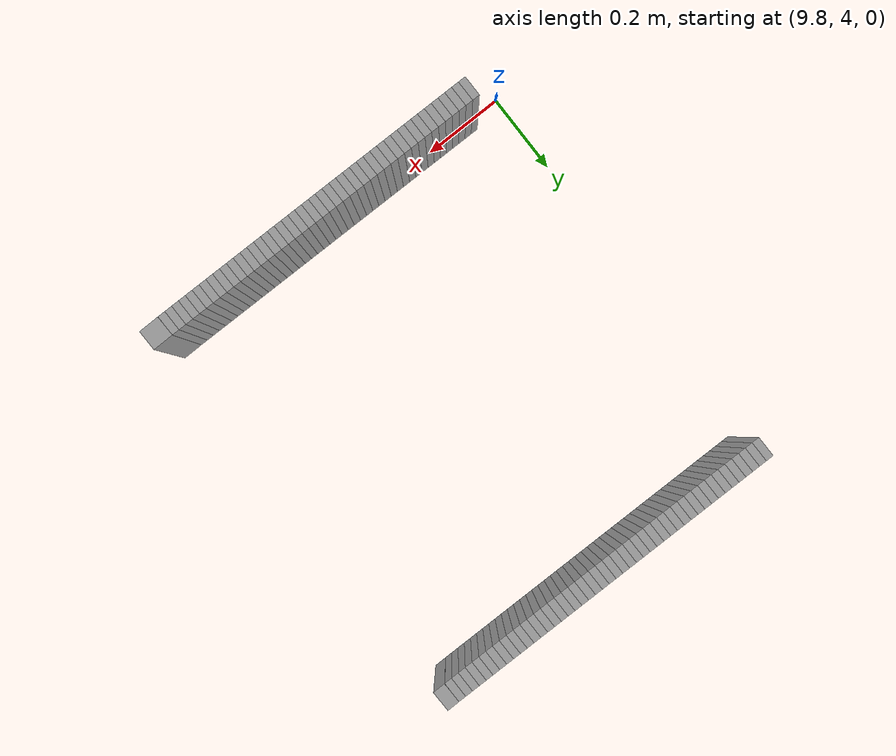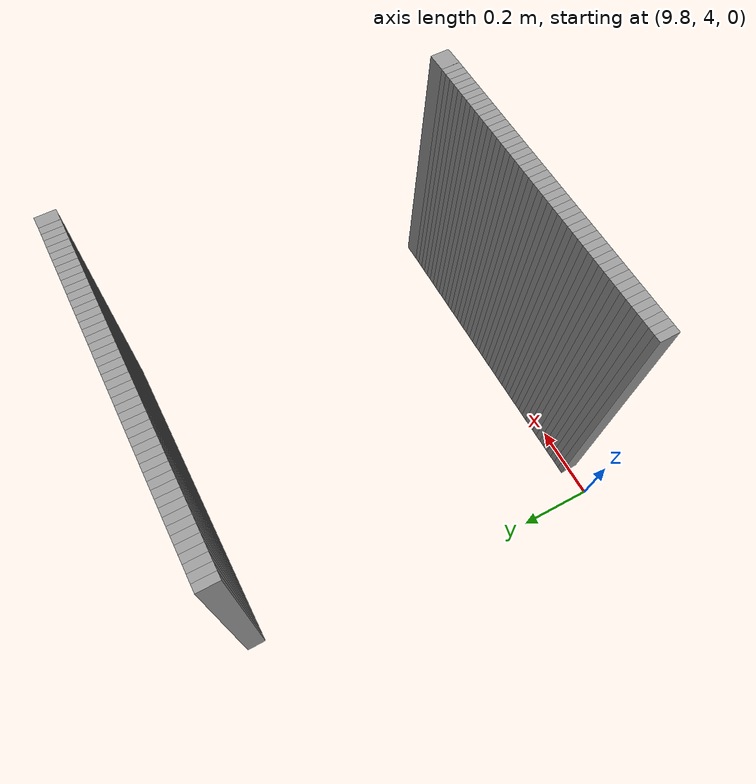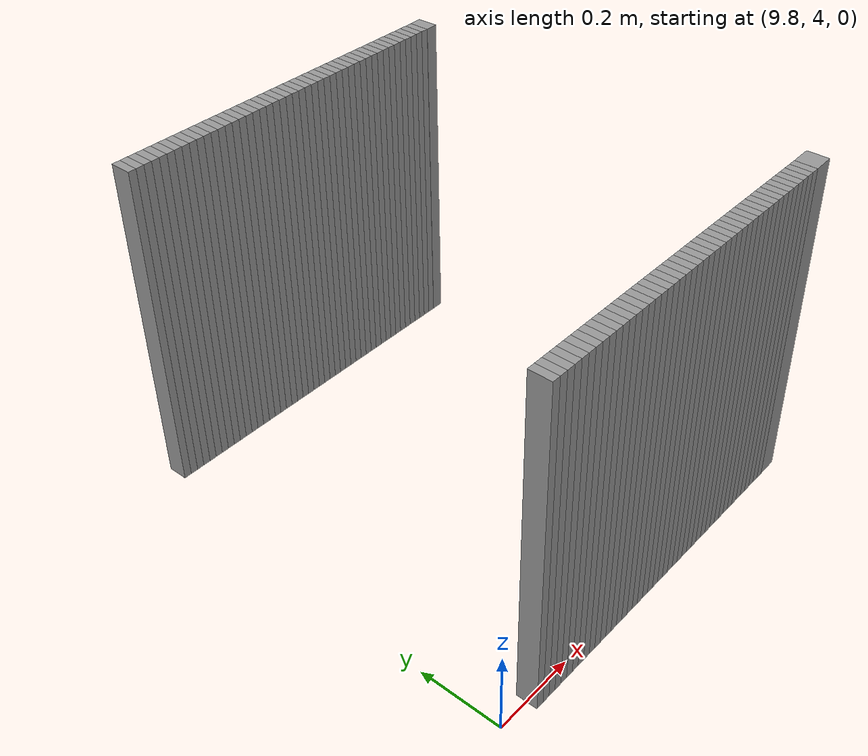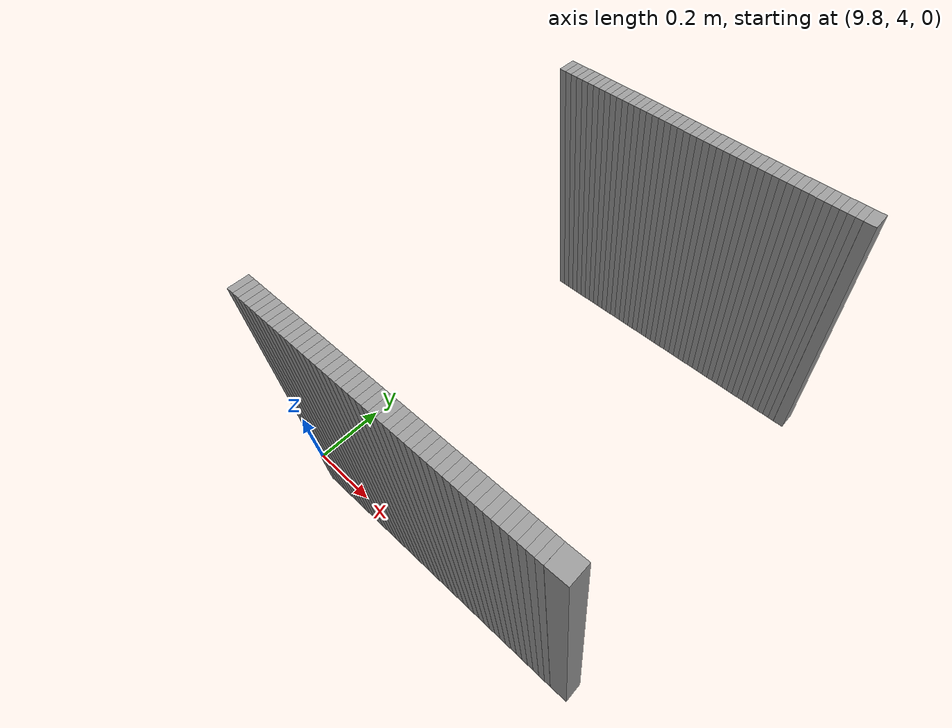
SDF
<sdf version="1.6">
 <model name="path_walls">
  <static>true</static>
  <model name="wall_left_12">
   <static>true</static>
   <pose>9.867909079521047 5.0 0.40 0 0 0.0</pose>
   <link name="wall_link">
    <visual name="wall_visual">
     <geometry><box><size>0.01863748760820627 0.05 0.8</size></box></geometry>
     <material><ambient>0.3 0.3 0.3 1</ambient><diffuse>0.6 0.6 0.6 1</diffuse></material>
    </visual>
    <collision name="wall_collision">
     <geometry><box><size>0.01863748760820627 0.05 0.8</size></box></geometry>
    </collision>
   </link>
  </model>
  <model name="wall_left_13">
   <static>true</static>
   <pose>9.886546567129255 5.0 0.40 0 0 0.0</pose>
   <link name="wall_link">
    <visual name="wall_visual">
     <geometry><box><size>0.018637487608208048 0.05 0.8</size></box></geometry>
     <material><ambient>0.3 0.3 0.3 1</ambient><diffuse>0.6 0.6 0.6 1</diffuse></material>
    </visual>
    <collision name="wall_collision">
     <geometry><box><size>0.018637487608208048 0.05 0.8</size></box></geometry>
    </collision>
   </link>
  </model>
  <model name="wall_left_14">
   <static>true</static>
   <pose>9.905184054737461 5.0 0.40 0 0 0.0</pose>
   <link name="wall_link">
    <visual name="wall_visual">
     <geometry><box><size>0.018637487608208048 0.05 0.8</size></box></geometry>
     <material><ambient>0.3 0.3 0.3 1</ambient><diffuse>0.6 0.6 0.6 1</diffuse></material>
    </visual>
    <collision name="wall_collision">
     <geometry><box><size>0.018637487608208048 0.05 0.8</size></box></geometry>
    </collision>
   </link>
  </model>
  <model name="wall_left_15">
   <static>true</static>
   <pose>9.923821542345669 5.0 0.40 0 0 0.0</pose>
   <link name="wall_link">
    <visual name="wall_visual">
     <geometry><box><size>0.01863748760820627 0.05 0.8</size></box></geometry>
     <material><ambient>0.3 0.3 0.3 1</ambient><diffuse>0.6 0.6 0.6 1</diffuse></material>
    </visual>
    <collision name="wall_collision">
     <geometry><box><size>0.01863748760820627 0.05 0.8</size></box></geometry>
    </collision>
   </link>
  </model>
  <model name="wall_left_16">
   <static>true</static>
   <pose>9.942459029953875 5.0 0.40 0 0 0.0</pose>
   <link name="wall_link">
    <visual name="wall_visual">
     <geometry><box><size>0.01863748760820627 0.05 0.8</size></box></geometry>
     <material><ambient>0.3 0.3 0.3 1</ambient><diffuse>0.6 0.6 0.6 1</diffuse></material>
    </visual>
    <collision name="wall_collision">
     <geometry><box><size>0.01863748760820627 0.05 0.8</size></box></geometry>
    </collision>
   </link>
  </model>
  <model name="wall_left_17">
   <static>true</static>
   <pose>9.961096517562083 5.0 0.40 0 0 0.0</pose>
   <link name="wall_link">
    <visual name="wall_visual">
     <geometry><box><size>0.018637487608208048 0.05 0.8</size></box></geometry>
     <material><ambient>0.3 0.3 0.3 1</ambient><diffuse>0.6 0.6 0.6 1</diffuse></material>
    </visual>
    <collision name="wall_collision">
     <geometry><box><size>0.018637487608208048 0.05 0.8</size></box></geometry>
    </collision>
   </link>
  </model>
  <model name="wall_left_18">
   <static>true</static>
   <pose>9.979734005170291 5.0 0.40 0 0 0.0</pose>
   <link name="wall_link">
    <visual name="wall_visual">
     <geometry><box><size>0.018637487608209824 0.05 0.8</size></box></geometry>
     <material><ambient>0.3 0.3 0.3 1</ambient><diffuse>0.6 0.6 0.6 1</diffuse></material>
    </visual>
    <collision name="wall_collision">
     <geometry><box><size>0.018637487608209824 0.05 0.8</size></box></geometry>
    </collision>
   </link>
  </model>
  <model name="wall_left_19">
   <static>true</static>
   <pose>9.9983714927785 5.0 0.40 0 0 0.0</pose>
   <link name="wall_link">
    <visual name="wall_visual">
     <geometry><box><size>0.018637487608204495 0.05 0.8</size></box></geometry>
     <material><ambient>0.3 0.3 0.3 1</ambient><diffuse>0.6 0.6 0.6 1</diffuse></material>
    </visual>
    <collision name="wall_collision">
     <geometry><box><size>0.018637487608204495 0.05 0.8</size></box></geometry>
    </collision>
   </link>
  </model>
  <model name="wall_left_20">
   <static>true</static>
   <pose>10.017008980386706 5.0 0.40 0 0 0.0</pose>
   <link name="wall_link">
    <visual name="wall_visual">
     <geometry><box><size>0.018637487608208048 0.05 0.8</size></box></geometry>
     <material><ambient>0.3 0.3 0.3 1</ambient><diffuse>0.6 0.6 0.6 1</diffuse></material>
    </visual>
    <collision name="wall_collision">
     <geometry><box><size>0.018637487608208048 0.05 0.8</size></box></geometry>
    </collision>
   </link>
  </model>
  <model name="wall_left_21">
   <static>true</static>
   <pose>10.035646467994912 5.0 0.40 0 0 0.0</pose>
   <link name="wall_link">
    <visual name="wall_visual">
     <geometry><box><size>0.01863748760820627 0.05 0.8</size></box></geometry>
     <material><ambient>0.3 0.3 0.3 1</ambient><diffuse>0.6 0.6 0.6 1</diffuse></material>
    </visual>
    <collision name="wall_collision">
     <geometry><box><size>0.01863748760820627 0.05 0.8</size></box></geometry>
    </collision>
   </link>
  </model>
  <model name="wall_left_22">
   <static>true</static>
   <pose>10.054283955603118 5.0 0.40 0 0 0.0</pose>
   <link name="wall_link">
    <visual name="wall_visual">
     <geometry><box><size>0.018637487608208048 0.05 0.8</size></box></geometry>
     <material><ambient>0.3 0.3 0.3 1</ambient><diffuse>0.6 0.6 0.6 1</diffuse></material>
    </visual>
    <collision name="wall_collision">
     <geometry><box><size>0.018637487608208048 0.05 0.8</size></box></geometry>
    </collision>
   </link>
  </model>
  <model name="wall_left_23">
   <static>true</static>
   <pose>10.072921443211326 5.0 0.40 0 0 0.0</pose>
   <link name="wall_link">
    <visual name="wall_visual">
     <geometry><box><size>0.01863748760820627 0.05 0.8</size></box></geometry>
     <material><ambient>0.3 0.3 0.3 1</ambient><diffuse>0.6 0.6 0.6 1</diffuse></material>
    </visual>
    <collision name="wall_collision">
     <geometry><box><size>0.01863748760820627 0.05 0.8</size></box></geometry>
    </collision>
   </link>
  </model>
  <model name="wall_left_24">
   <static>true</static>
   <pose>10.091558930819534 5.0 0.40 0 0 0.0</pose>
   <link name="wall_link">
    <visual name="wall_visual">
     <geometry><box><size>0.018637487608208048 0.05 0.8</size></box></geometry>
     <material><ambient>0.3 0.3 0.3 1</ambient><diffuse>0.6 0.6 0.6 1</diffuse></material>
    </visual>
    <collision name="wall_collision">
     <geometry><box><size>0.018637487608208048 0.05 0.8</size></box></geometry>
    </collision>
   </link>
  </model>
  <model name="wall_left_25">
   <static>true</static>
   <pose>10.11019641842774 5.0 0.40 0 0 0.0</pose>
   <link name="wall_link">
    <visual name="wall_visual">
     <geometry><box><size>0.01863748760820627 0.05 0.8</size></box></geometry>
     <material><ambient>0.3 0.3 0.3 1</ambient><diffuse>0.6 0.6 0.6 1</diffuse></material>
    </visual>
    <collision name="wall_collision">
     <geometry><box><size>0.01863748760820627 0.05 0.8</size></box></geometry>
    </collision>
   </link>
  </model>
  <model name="wall_left_26">
   <static>true</static>
   <pose>10.128833906035947 5.0 0.40 0 0 0.0</pose>
   <link name="wall_link">
    <visual name="wall_visual">
     <geometry><box><size>0.018637487608208048 0.05 0.8</size></box></geometry>
     <material><ambient>0.3 0.3 0.3 1</ambient><diffuse>0.6 0.6 0.6 1</diffuse></material>
    </visual>
    <collision name="wall_collision">
     <geometry><box><size>0.018637487608208048 0.05 0.8</size></box></geometry>
    </collision>
   </link>
  </model>
  <model name="wall_left_27">
   <static>true</static>
   <pose>10.147471393644155 5.0 0.40 0 0 0.0</pose>
   <link name="wall_link">
    <visual name="wall_visual">
     <geometry><box><size>0.01863748760820627 0.05 0.8</size></box></geometry>
     <material><ambient>0.3 0.3 0.3 1</ambient><diffuse>0.6 0.6 0.6 1</diffuse></material>
    </visual>
    <collision name="wall_collision">
     <geometry><box><size>0.01863748760820627 0.05 0.8</size></box></geometry>
    </collision>
   </link>
  </model>
  <model name="wall_left_28">
   <static>true</static>
   <pose>10.166108881252363 5.0 0.40 0 0 0.0</pose>
   <link name="wall_link">
    <visual name="wall_visual">
     <geometry><box><size>0.018637487608208048 0.05 0.8</size></box></geometry>
     <material><ambient>0.3 0.3 0.3 1</ambient><diffuse>0.6 0.6 0.6 1</diffuse></material>
    </visual>
    <collision name="wall_collision">
     <geometry><box><size>0.018637487608208048 0.05 0.8</size></box></geometry>
    </collision>
   </link>
  </model>
  <model name="wall_left_29">
   <static>true</static>
   <pose>10.18474636886057 5.0 0.40 0 0 0.0</pose>
   <link name="wall_link">
    <visual name="wall_visual">
     <geometry><box><size>0.01863748760820627 0.05 0.8</size></box></geometry>
     <material><ambient>0.3 0.3 0.3 1</ambient><diffuse>0.6 0.6 0.6 1</diffuse></material>
    </visual>
    <collision name="wall_collision">
     <geometry><box><size>0.01863748760820627 0.05 0.8</size></box></geometry>
    </collision>
   </link>
  </model>
  <model name="wall_left_30">
   <static>true</static>
   <pose>10.203383856468776 5.0 0.40 0 0 0.0</pose>
   <link name="wall_link">
    <visual name="wall_visual">
     <geometry><box><size>0.018637487608208048 0.05 0.8</size></box></geometry>
     <material><ambient>0.3 0.3 0.3 1</ambient><diffuse>0.6 0.6 0.6 1</diffuse></material>
    </visual>
    <collision name="wall_collision">
     <geometry><box><size>0.018637487608208048 0.05 0.8</size></box></geometry>
    </collision>
   </link>
  </model>
  <model name="wall_left_31">
   <static>true</static>
   <pose>10.222021344076985 5.0 0.40 0 0 0.0</pose>
   <link name="wall_link">
    <visual name="wall_visual">
     <geometry><box><size>0.018637487608208048 0.05 0.8</size></box></geometry>
     <material><ambient>0.3 0.3 0.3 1</ambient><diffuse>0.6 0.6 0.6 1</diffuse></material>
    </visual>
    <collision name="wall_collision">
     <geometry><box><size>0.018637487608208048 0.05 0.8</size></box></geometry>
    </collision>
   </link>
  </model>
  <model name="wall_left_32">
   <static>true</static>
   <pose>10.240658831685192 5.0 0.40 0 0 0.0</pose>
   <link name="wall_link">
    <visual name="wall_visual">
     <geometry><box><size>0.018637487608208048 0.05 0.8</size></box></geometry>
     <material><ambient>0.3 0.3 0.3 1</ambient><diffuse>0.6 0.6 0.6 1</diffuse></material>
    </visual>
    <collision name="wall_collision">
     <geometry><box><size>0.018637487608208048 0.05 0.8</size></box></geometry>
    </collision>
   </link>
  </model>
  <model name="wall_left_33">
   <static>true</static>
   <pose>10.259296319293401 5.0 0.40 0 0 0.0</pose>
   <link name="wall_link">
    <visual name="wall_visual">
     <geometry><box><size>0.018637487608208048 0.05 0.8</size></box></geometry>
     <material><ambient>0.3 0.3 0.3 1</ambient><diffuse>0.6 0.6 0.6 1</diffuse></material>
    </visual>
    <collision name="wall_collision">
     <geometry><box><size>0.018637487608208048 0.05 0.8</size></box></geometry>
    </collision>
   </link>
  </model>
  <model name="wall_left_34">
   <static>true</static>
   <pose>10.277933806901606 5.0 0.40 0 0 0.0</pose>
   <link name="wall_link">
    <visual name="wall_visual">
     <geometry><box><size>0.01863748760820272 0.05 0.8</size></box></geometry>
     <material><ambient>0.3 0.3 0.3 1</ambient><diffuse>0.6 0.6 0.6 1</diffuse></material>
    </visual>
    <collision name="wall_collision">
     <geometry><box><size>0.01863748760820272 0.05 0.8</size></box></geometry>
    </collision>
   </link>
  </model>
  <model name="wall_left_35">
   <static>true</static>
   <pose>10.29657129450981 5.0 0.40 0 0 0.0</pose>
   <link name="wall_link">
    <visual name="wall_visual">
     <geometry><box><size>0.018637487608208048 0.05 0.8</size></box></geometry>
     <material><ambient>0.3 0.3 0.3 1</ambient><diffuse>0.6 0.6 0.6 1</diffuse></material>
    </visual>
    <collision name="wall_collision">
     <geometry><box><size>0.018637487608208048 0.05 0.8</size></box></geometry>
    </collision>
   </link>
  </model>
  <model name="wall_left_36">
   <static>true</static>
   <pose>10.31520878211802 5.0 0.40 0 0 0.0</pose>
   <link name="wall_link">
    <visual name="wall_visual">
     <geometry><box><size>0.018637487608208048 0.05 0.8</size></box></geometry>
     <material><ambient>0.3 0.3 0.3 1</ambient><diffuse>0.6 0.6 0.6 1</diffuse></material>
    </visual>
    <collision name="wall_collision">
     <geometry><box><size>0.018637487608208048 0.05 0.8</size></box></geometry>
    </collision>
   </link>
  </model>
  <model name="wall_left_37">
   <static>true</static>
   <pose>10.333846269726227 5.0 0.40 0 0 0.0</pose>
   <link name="wall_link">
    <visual name="wall_visual">
     <geometry><box><size>0.018637487608208048 0.05 0.8</size></box></geometry>
     <material><ambient>0.3 0.3 0.3 1</ambient><diffuse>0.6 0.6 0.6 1</diffuse></material>
    </visual>
    <collision name="wall_collision">
     <geometry><box><size>0.018637487608208048 0.05 0.8</size></box></geometry>
    </collision>
   </link>
  </model>
  <model name="wall_left_38">
   <static>true</static>
   <pose>10.352483757334435 5.0 0.40 0 0 0.0</pose>
   <link name="wall_link">
    <visual name="wall_visual">
     <geometry><box><size>0.01863748760820627 0.05 0.8</size></box></geometry>
     <material><ambient>0.3 0.3 0.3 1</ambient><diffuse>0.6 0.6 0.6 1</diffuse></material>
    </visual>
    <collision name="wall_collision">
     <geometry><box><size>0.01863748760820627 0.05 0.8</size></box></geometry>
    </collision>
   </link>
  </model>
  <model name="wall_left_39">
   <static>true</static>
   <pose>10.371121244942643 5.0 0.40 0 0 0.0</pose>
   <link name="wall_link">
    <visual name="wall_visual">
     <geometry><box><size>0.018637487608208048 0.05 0.8</size></box></geometry>
     <material><ambient>0.3 0.3 0.3 1</ambient><diffuse>0.6 0.6 0.6 1</diffuse></material>
    </visual>
    <collision name="wall_collision">
     <geometry><box><size>0.018637487608208048 0.05 0.8</size></box></geometry>
    </collision>
   </link>
  </model>
  <model name="wall_left_40">
   <static>true</static>
   <pose>10.389758732550849 5.0 0.40 0 0 0.0</pose>
   <link name="wall_link">
    <visual name="wall_visual">
     <geometry><box><size>0.01863748760820627 0.05 0.8</size></box></geometry>
     <material><ambient>0.3 0.3 0.3 1</ambient><diffuse>0.6 0.6 0.6 1</diffuse></material>
    </visual>
    <collision name="wall_collision">
     <geometry><box><size>0.01863748760820627 0.05 0.8</size></box></geometry>
    </collision>
   </link>
  </model>
  <model name="wall_left_41">
   <static>true</static>
   <pose>10.408396220159055 5.0 0.40 0 0 0.0</pose>
   <link name="wall_link">
    <visual name="wall_visual">
     <geometry><box><size>0.018637487608208048 0.05 0.8</size></box></geometry>
     <material><ambient>0.3 0.3 0.3 1</ambient><diffuse>0.6 0.6 0.6 1</diffuse></material>
    </visual>
    <collision name="wall_collision">
     <geometry><box><size>0.018637487608208048 0.05 0.8</size></box></geometry>
    </collision>
   </link>
  </model>
  <model name="wall_left_42">
   <static>true</static>
   <pose>10.427033707767263 5.0 0.40 0 0 0.0</pose>
   <link name="wall_link">
    <visual name="wall_visual">
     <geometry><box><size>0.01863748760820627 0.05 0.8</size></box></geometry>
     <material><ambient>0.3 0.3 0.3 1</ambient><diffuse>0.6 0.6 0.6 1</diffuse></material>
    </visual>
    <collision name="wall_collision">
     <geometry><box><size>0.01863748760820627 0.05 0.8</size></box></geometry>
    </collision>
   </link>
  </model>
  <model name="wall_left_43">
   <static>true</static>
   <pose>10.445671195375471 5.0 0.40 0 0 0.0</pose>
   <link name="wall_link">
    <visual name="wall_visual">
     <geometry><box><size>0.018637487608208048 0.05 0.8</size></box></geometry>
     <material><ambient>0.3 0.3 0.3 1</ambient><diffuse>0.6 0.6 0.6 1</diffuse></material>
    </visual>
    <collision name="wall_collision">
     <geometry><box><size>0.018637487608208048 0.05 0.8</size></box></geometry>
    </collision>
   </link>
  </model>
  <model name="wall_left_44">
   <static>true</static>
   <pose>10.464308682983678 5.0 0.40 0 0 0.0</pose>
   <link name="wall_link">
    <visual name="wall_visual">
     <geometry><box><size>0.01863748760820627 0.05 0.8</size></box></geometry>
     <material><ambient>0.3 0.3 0.3 1</ambient><diffuse>0.6 0.6 0.6 1</diffuse></material>
    </visual>
    <collision name="wall_collision">
     <geometry><box><size>0.01863748760820627 0.05 0.8</size></box></geometry>
    </collision>
   </link>
  </model>
  <model name="wall_left_45">
   <static>true</static>
   <pose>10.482946170591884 5.0 0.40 0 0 0.0</pose>
   <link name="wall_link">
    <visual name="wall_visual">
     <geometry><box><size>0.018637487608208048 0.05 0.8</size></box></geometry>
     <material><ambient>0.3 0.3 0.3 1</ambient><diffuse>0.6 0.6 0.6 1</diffuse></material>
    </visual>
    <collision name="wall_collision">
     <geometry><box><size>0.018637487608208048 0.05 0.8</size></box></geometry>
    </collision>
   </link>
  </model>
  <model name="wall_left_46">
   <static>true</static>
   <pose>10.501583658200094 5.0 0.40 0 0 0.0</pose>
   <link name="wall_link">
    <visual name="wall_visual">
     <geometry><box><size>0.018637487608208048 0.05 0.8</size></box></geometry>
     <material><ambient>0.3 0.3 0.3 1</ambient><diffuse>0.6 0.6 0.6 1</diffuse></material>
    </visual>
    <collision name="wall_collision">
     <geometry><box><size>0.018637487608208048 0.05 0.8</size></box></geometry>
    </collision>
   </link>
  </model>
  <model name="wall_left_47">
   <static>true</static>
   <pose>10.5202211458083 5.0 0.40 0 0 0.0</pose>
   <link name="wall_link">
    <visual name="wall_visual">
     <geometry><box><size>0.018637487608208048 0.05 0.8</size></box></geometry>
     <material><ambient>0.3 0.3 0.3 1</ambient><diffuse>0.6 0.6 0.6 1</diffuse></material>
    </visual>
    <collision name="wall_collision">
     <geometry><box><size>0.018637487608208048 0.05 0.8</size></box></geometry>
    </collision>
   </link>
  </model>
  <model name="wall_left_48">
   <static>true</static>
   <pose>10.538858633416506 5.0 0.40 0 0 0.0</pose>
   <link name="wall_link">
    <visual name="wall_visual">
     <geometry><box><size>0.018637487608204495 0.05 0.8</size></box></geometry>
     <material><ambient>0.3 0.3 0.3 1</ambient><diffuse>0.6 0.6 0.6 1</diffuse></material>
    </visual>
    <collision name="wall_collision">
     <geometry><box><size>0.018637487608204495 0.05 0.8</size></box></geometry>
    </collision>
   </link>
  </model>
  <model name="wall_left_49">
   <static>true</static>
   <pose>10.557496121024712 5.0 0.40 0 0 0.0</pose>
   <link name="wall_link">
    <visual name="wall_visual">
     <geometry><box><size>0.01863748760820627 0.05 0.8</size></box></geometry>
     <material><ambient>0.3 0.3 0.3 1</ambient><diffuse>0.6 0.6 0.6 1</diffuse></material>
    </visual>
    <collision name="wall_collision">
     <geometry><box><size>0.01863748760820627 0.05 0.8</size></box></geometry>
    </collision>
   </link>
  </model>
  <model name="wall_left_50">
   <static>true</static>
   <pose>10.576133608632919 5.0 0.40 0 0 0.0</pose>
   <link name="wall_link">
    <visual name="wall_visual">
     <geometry><box><size>0.018637487608208048 0.05 0.8</size></box></geometry>
     <material><ambient>0.3 0.3 0.3 1</ambient><diffuse>0.6 0.6 0.6 1</diffuse></material>
    </visual>
    <collision name="wall_collision">
     <geometry><box><size>0.018637487608208048 0.05 0.8</size></box></geometry>
    </collision>
   </link>
  </model>
  <model name="wall_left_51">
   <static>true</static>
   <pose>10.594771096241129 5.0 0.40 0 0 0.0</pose>
   <link name="wall_link">
    <visual name="wall_visual">
     <geometry><box><size>0.018637487608208048 0.05 0.8</size></box></geometry>
     <material><ambient>0.3 0.3 0.3 1</ambient><diffuse>0.6 0.6 0.6 1</diffuse></material>
    </visual>
    <collision name="wall_collision">
     <geometry><box><size>0.018637487608208048 0.05 0.8</size></box></geometry>
    </collision>
   </link>
  </model>
  <model name="wall_left_52">
   <static>true</static>
   <pose>10.613408583849335 5.0 0.40 0 0 0.0</pose>
   <link name="wall_link">
    <visual name="wall_visual">
     <geometry><box><size>0.018637487608208048 0.05 0.8</size></box></geometry>
     <material><ambient>0.3 0.3 0.3 1</ambient><diffuse>0.6 0.6 0.6 1</diffuse></material>
    </visual>
    <collision name="wall_collision">
     <geometry><box><size>0.018637487608208048 0.05 0.8</size></box></geometry>
    </collision>
   </link>
  </model>
  <model name="wall_left_53">
   <static>true</static>
   <pose>10.632046071457543 5.0 0.40 0 0 0.0</pose>
   <link name="wall_link">
    <visual name="wall_visual">
     <geometry><box><size>0.01863748760820627 0.05 0.8</size></box></geometry>
     <material><ambient>0.3 0.3 0.3 1</ambient><diffuse>0.6 0.6 0.6 1</diffuse></material>
    </visual>
    <collision name="wall_collision">
     <geometry><box><size>0.01863748760820627 0.05 0.8</size></box></geometry>
    </collision>
   </link>
  </model>
  <model name="wall_left_54">
   <static>true</static>
   <pose>10.650683559065751 5.0 0.40 0 0 0.0</pose>
   <link name="wall_link">
    <visual name="wall_visual">
     <geometry><box><size>0.018637487608208048 0.05 0.8</size></box></geometry>
     <material><ambient>0.3 0.3 0.3 1</ambient><diffuse>0.6 0.6 0.6 1</diffuse></material>
    </visual>
    <collision name="wall_collision">
     <geometry><box><size>0.018637487608208048 0.05 0.8</size></box></geometry>
    </collision>
   </link>
  </model>
  <model name="wall_left_55">
   <static>true</static>
   <pose>10.669321046673957 5.0 0.40 0 0 0.0</pose>
   <link name="wall_link">
    <visual name="wall_visual">
     <geometry><box><size>0.01863748760820627 0.05 0.8</size></box></geometry>
     <material><ambient>0.3 0.3 0.3 1</ambient><diffuse>0.6 0.6 0.6 1</diffuse></material>
    </visual>
    <collision name="wall_collision">
     <geometry><box><size>0.01863748760820627 0.05 0.8</size></box></geometry>
    </collision>
   </link>
  </model>
  <model name="wall_left_56">
   <static>true</static>
   <pose>10.687958534282163 5.0 0.40 0 0 0.0</pose>
   <link name="wall_link">
    <visual name="wall_visual">
     <geometry><box><size>0.018637487608208048 0.05 0.8</size></box></geometry>
     <material><ambient>0.3 0.3 0.3 1</ambient><diffuse>0.6 0.6 0.6 1</diffuse></material>
    </visual>
    <collision name="wall_collision">
     <geometry><box><size>0.018637487608208048 0.05 0.8</size></box></geometry>
    </collision>
   </link>
  </model>
  <model name="wall_left_57">
   <static>true</static>
   <pose>10.706596021890373 5.0 0.40 0 0 0.0</pose>
   <link name="wall_link">
    <visual name="wall_visual">
     <geometry><box><size>0.018637487608208048 0.05 0.8</size></box></geometry>
     <material><ambient>0.3 0.3 0.3 1</ambient><diffuse>0.6 0.6 0.6 1</diffuse></material>
    </visual>
    <collision name="wall_collision">
     <geometry><box><size>0.018637487608208048 0.05 0.8</size></box></geometry>
    </collision>
   </link>
  </model>
  <model name="wall_left_58">
   <static>true</static>
   <pose>10.731258492126667 5.000261897668705 0.40 0 0 0.017067056067915847</pose>
   <link name="wall_link">
    <visual name="wall_visual">
     <geometry><box><size>0.030691922795077365 0.05 0.8</size></box></geometry>
     <material><ambient>0.3 0.3 0.3 1</ambient><diffuse>0.6 0.6 0.6 1</diffuse></material>
    </visual>
    <collision name="wall_collision">
     <geometry><box><size>0.030691922795077365 0.05 0.8</size></box></geometry>
    </collision>
   </link>
  </model>
  <model name="wall_right_13">
   <static>true</static>
   <pose>9.886546567129255 4.0 0.40 0 0 0.0</pose>
   <link name="wall_link">
    <visual name="wall_visual">
     <geometry><box><size>0.018637487608208048 0.05 0.8</size></box></geometry>
     <material><ambient>0.3 0.3 0.3 1</ambient><diffuse>0.6 0.6 0.6 1</diffuse></material>
    </visual>
    <collision name="wall_collision">
     <geometry><box><size>0.018637487608208048 0.05 0.8</size></box></geometry>
    </collision>
   </link>
  </model>
  <model name="wall_right_14">
   <static>true</static>
   <pose>9.905184054737461 4.0 0.40 0 0 0.0</pose>
   <link name="wall_link">
    <visual name="wall_visual">
     <geometry><box><size>0.018637487608208048 0.05 0.8</size></box></geometry>
     <material><ambient>0.3 0.3 0.3 1</ambient><diffuse>0.6 0.6 0.6 1</diffuse></material>
    </visual>
    <collision name="wall_collision">
     <geometry><box><size>0.018637487608208048 0.05 0.8</size></box></geometry>
    </collision>
   </link>
  </model>
  <model name="wall_right_15">
   <static>true</static>
   <pose>9.923821542345669 4.0 0.40 0 0 0.0</pose>
   <link name="wall_link">
    <visual name="wall_visual">
     <geometry><box><size>0.01863748760820627 0.05 0.8</size></box></geometry>
     <material><ambient>0.3 0.3 0.3 1</ambient><diffuse>0.6 0.6 0.6 1</diffuse></material>
    </visual>
    <collision name="wall_collision">
     <geometry><box><size>0.01863748760820627 0.05 0.8</size></box></geometry>
    </collision>
   </link>
  </model>
  <model name="wall_right_16">
   <static>true</static>
   <pose>9.942459029953875 4.0 0.40 0 0 0.0</pose>
   <link name="wall_link">
    <visual name="wall_visual">
     <geometry><box><size>0.01863748760820627 0.05 0.8</size></box></geometry>
     <material><ambient>0.3 0.3 0.3 1</ambient><diffuse>0.6 0.6 0.6 1</diffuse></material>
    </visual>
    <collision name="wall_collision">
     <geometry><box><size>0.01863748760820627 0.05 0.8</size></box></geometry>
    </collision>
   </link>
  </model>
  <model name="wall_right_17">
   <static>true</static>
   <pose>9.961096517562083 4.0 0.40 0 0 0.0</pose>
   <link name="wall_link">
    <visual name="wall_visual">
     <geometry><box><size>0.018637487608208048 0.05 0.8</size></box></geometry>
     <material><ambient>0.3 0.3 0.3 1</ambient><diffuse>0.6 0.6 0.6 1</diffuse></material>
    </visual>
    <collision name="wall_collision">
     <geometry><box><size>0.018637487608208048 0.05 0.8</size></box></geometry>
    </collision>
   </link>
  </model>
  <model name="wall_right_18">
   <static>true</static>
   <pose>9.979734005170291 4.0 0.40 0 0 0.0</pose>
   <link name="wall_link">
    <visual name="wall_visual">
     <geometry><box><size>0.018637487608209824 0.05 0.8</size></box></geometry>
     <material><ambient>0.3 0.3 0.3 1</ambient><diffuse>0.6 0.6 0.6 1</diffuse></material>
    </visual>
    <collision name="wall_collision">
     <geometry><box><size>0.018637487608209824 0.05 0.8</size></box></geometry>
    </collision>
   </link>
  </model>
  <model name="wall_right_19">
   <static>true</static>
   <pose>9.9983714927785 4.0 0.40 0 0 0.0</pose>
   <link name="wall_link">
    <visual name="wall_visual">
     <geometry><box><size>0.018637487608204495 0.05 0.8</size></box></geometry>
     <material><ambient>0.3 0.3 0.3 1</ambient><diffuse>0.6 0.6 0.6 1</diffuse></material>
    </visual>
    <collision name="wall_collision">
     <geometry><box><size>0.018637487608204495 0.05 0.8</size></box></geometry>
    </collision>
   </link>
  </model>
  <model name="wall_right_20">
   <static>true</static>
   <pose>10.017008980386706 4.0 0.40 0 0 0.0</pose>
   <link name="wall_link">
    <visual name="wall_visual">
     <geometry><box><size>0.018637487608208048 0.05 0.8</size></box></geometry>
     <material><ambient>0.3 0.3 0.3 1</ambient><diffuse>0.6 0.6 0.6 1</diffuse></material>
    </visual>
    <collision name="wall_collision">
     <geometry><box><size>0.018637487608208048 0.05 0.8</size></box></geometry>
    </collision>
   </link>
  </model>
  <model name="wall_right_21">
   <static>true</static>
   <pose>10.035646467994912 4.0 0.40 0 0 0.0</pose>
   <link name="wall_link">
    <visual name="wall_visual">
     <geometry><box><size>0.01863748760820627 0.05 0.8</size></box></geometry>
     <material><ambient>0.3 0.3 0.3 1</ambient><diffuse>0.6 0.6 0.6 1</diffuse></material>
    </visual>
    <collision name="wall_collision">
     <geometry><box><size>0.01863748760820627 0.05 0.8</size></box></geometry>
    </collision>
   </link>
  </model>
  <model name="wall_right_22">
   <static>true</static>
   <pose>10.054283955603118 4.0 0.40 0 0 0.0</pose>
   <link name="wall_link">
    <visual name="wall_visual">
     <geometry><box><size>0.018637487608208048 0.05 0.8</size></box></geometry>
     <material><ambient>0.3 0.3 0.3 1</ambient><diffuse>0.6 0.6 0.6 1</diffuse></material>
    </visual>
    <collision name="wall_collision">
     <geometry><box><size>0.018637487608208048 0.05 0.8</size></box></geometry>
    </collision>
   </link>
  </model>
  <model name="wall_right_23">
   <static>true</static>
   <pose>10.072921443211326 4.0 0.40 0 0 0.0</pose>
   <link name="wall_link">
    <visual name="wall_visual">
     <geometry><box><size>0.01863748760820627 0.05 0.8</size></box></geometry>
     <material><ambient>0.3 0.3 0.3 1</ambient><diffuse>0.6 0.6 0.6 1</diffuse></material>
    </visual>
    <collision name="wall_collision">
     <geometry><box><size>0.01863748760820627 0.05 0.8</size></box></geometry>
    </collision>
   </link>
  </model>
  <model name="wall_right_24">
   <static>true</static>
   <pose>10.091558930819534 4.0 0.40 0 0 0.0</pose>
   <link name="wall_link">
    <visual name="wall_visual">
     <geometry><box><size>0.018637487608208048 0.05 0.8</size></box></geometry>
     <material><ambient>0.3 0.3 0.3 1</ambient><diffuse>0.6 0.6 0.6 1</diffuse></material>
    </visual>
    <collision name="wall_collision">
     <geometry><box><size>0.018637487608208048 0.05 0.8</size></box></geometry>
    </collision>
   </link>
  </model>
  <model name="wall_right_25">
   <static>true</static>
   <pose>10.11019641842774 4.0 0.40 0 0 0.0</pose>
   <link name="wall_link">
    <visual name="wall_visual">
     <geometry><box><size>0.01863748760820627 0.05 0.8</size></box></geometry>
     <material><ambient>0.3 0.3 0.3 1</ambient><diffuse>0.6 0.6 0.6 1</diffuse></material>
    </visual>
    <collision name="wall_collision">
     <geometry><box><size>0.01863748760820627 0.05 0.8</size></box></geometry>
    </collision>
   </link>
  </model>
  <model name="wall_right_26">
   <static>true</static>
   <pose>10.128833906035947 4.0 0.40 0 0 0.0</pose>
   <link name="wall_link">
    <visual name="wall_visual">
     <geometry><box><size>0.018637487608208048 0.05 0.8</size></box></geometry>
     <material><ambient>0.3 0.3 0.3 1</ambient><diffuse>0.6 0.6 0.6 1</diffuse></material>
    </visual>
    <collision name="wall_collision">
     <geometry><box><size>0.018637487608208048 0.05 0.8</size></box></geometry>
    </collision>
   </link>
  </model>
  <model name="wall_right_27">
   <static>true</static>
   <pose>10.147471393644155 4.0 0.40 0 0 0.0</pose>
   <link name="wall_link">
    <visual name="wall_visual">
     <geometry><box><size>0.01863748760820627 0.05 0.8</size></box></geometry>
     <material><ambient>0.3 0.3 0.3 1</ambient><diffuse>0.6 0.6 0.6 1</diffuse></material>
    </visual>
    <collision name="wall_collision">
     <geometry><box><size>0.01863748760820627 0.05 0.8</size></box></geometry>
    </collision>
   </link>
  </model>
  <model name="wall_right_28">
   <static>true</static>
   <pose>10.166108881252363 4.0 0.40 0 0 0.0</pose>
   <link name="wall_link">
    <visual name="wall_visual">
     <geometry><box><size>0.018637487608208048 0.05 0.8</size></box></geometry>
     <material><ambient>0.3 0.3 0.3 1</ambient><diffuse>0.6 0.6 0.6 1</diffuse></material>
    </visual>
    <collision name="wall_collision">
     <geometry><box><size>0.018637487608208048 0.05 0.8</size></box></geometry>
    </collision>
   </link>
  </model>
  <model name="wall_right_29">
   <static>true</static>
   <pose>10.18474636886057 4.0 0.40 0 0 0.0</pose>
   <link name="wall_link">
    <visual name="wall_visual">
     <geometry><box><size>0.01863748760820627 0.05 0.8</size></box></geometry>
     <material><ambient>0.3 0.3 0.3 1</ambient><diffuse>0.6 0.6 0.6 1</diffuse></material>
    </visual>
    <collision name="wall_collision">
     <geometry><box><size>0.01863748760820627 0.05 0.8</size></box></geometry>
    </collision>
   </link>
  </model>
  <model name="wall_right_30">
   <static>true</static>
   <pose>10.203383856468776 4.0 0.40 0 0 0.0</pose>
   <link name="wall_link">
    <visual name="wall_visual">
     <geometry><box><size>0.018637487608208048 0.05 0.8</size></box></geometry>
     <material><ambient>0.3 0.3 0.3 1</ambient><diffuse>0.6 0.6 0.6 1</diffuse></material>
    </visual>
    <collision name="wall_collision">
     <geometry><box><size>0.018637487608208048 0.05 0.8</size></box></geometry>
    </collision>
   </link>
  </model>
  <model name="wall_right_31">
   <static>true</static>
   <pose>10.222021344076985 4.0 0.40 0 0 0.0</pose>
   <link name="wall_link">
    <visual name="wall_visual">
     <geometry><box><size>0.018637487608208048 0.05 0.8</size></box></geometry>
     <material><ambient>0.3 0.3 0.3 1</ambient><diffuse>0.6 0.6 0.6 1</diffuse></material>
    </visual>
    <collision name="wall_collision">
     <geometry><box><size>0.018637487608208048 0.05 0.8</size></box></geometry>
    </collision>
   </link>
  </model>
  <model name="wall_right_32">
   <static>true</static>
   <pose>10.240658831685192 4.0 0.40 0 0 0.0</pose>
   <link name="wall_link">
    <visual name="wall_visual">
     <geometry><box><size>0.018637487608208048 0.05 0.8</size></box></geometry>
     <material><ambient>0.3 0.3 0.3 1</ambient><diffuse>0.6 0.6 0.6 1</diffuse></material>
    </visual>
    <collision name="wall_collision">
     <geometry><box><size>0.018637487608208048 0.05 0.8</size></box></geometry>
    </collision>
   </link>
  </model>
  <model name="wall_right_33">
   <static>true</static>
   <pose>10.259296319293401 4.0 0.40 0 0 0.0</pose>
   <link name="wall_link">
    <visual name="wall_visual">
     <geometry><box><size>0.018637487608208048 0.05 0.8</size></box></geometry>
     <material><ambient>0.3 0.3 0.3 1</ambient><diffuse>0.6 0.6 0.6 1</diffuse></material>
    </visual>
    <collision name="wall_collision">
     <geometry><box><size>0.018637487608208048 0.05 0.8</size></box></geometry>
    </collision>
   </link>
  </model>
  <model name="wall_right_34">
   <static>true</static>
   <pose>10.277933806901606 4.0 0.40 0 0 0.0</pose>
   <link name="wall_link">
    <visual name="wall_visual">
     <geometry><box><size>0.01863748760820272 0.05 0.8</size></box></geometry>
     <material><ambient>0.3 0.3 0.3 1</ambient><diffuse>0.6 0.6 0.6 1</diffuse></material>
    </visual>
    <collision name="wall_collision">
     <geometry><box><size>0.01863748760820272 0.05 0.8</size></box></geometry>
    </collision>
   </link>
  </model>
  <model name="wall_right_35">
   <static>true</static>
   <pose>10.29657129450981 4.0 0.40 0 0 0.0</pose>
   <link name="wall_link">
    <visual name="wall_visual">
     <geometry><box><size>0.018637487608208048 0.05 0.8</size></box></geometry>
     <material><ambient>0.3 0.3 0.3 1</ambient><diffuse>0.6 0.6 0.6 1</diffuse></material>
    </visual>
    <collision name="wall_collision">
     <geometry><box><size>0.018637487608208048 0.05 0.8</size></box></geometry>
    </collision>
   </link>
  </model>
  <model name="wall_right_36">
   <static>true</static>
   <pose>10.31520878211802 4.0 0.40 0 0 0.0</pose>
   <link name="wall_link">
    <visual name="wall_visual">
     <geometry><box><size>0.018637487608208048 0.05 0.8</size></box></geometry>
     <material><ambient>0.3 0.3 0.3 1</ambient><diffuse>0.6 0.6 0.6 1</diffuse></material>
    </visual>
    <collision name="wall_collision">
     <geometry><box><size>0.018637487608208048 0.05 0.8</size></box></geometry>
    </collision>
   </link>
  </model>
  <model name="wall_right_37">
   <static>true</static>
   <pose>10.333846269726227 4.0 0.40 0 0 0.0</pose>
   <link name="wall_link">
    <visual name="wall_visual">
     <geometry><box><size>0.018637487608208048 0.05 0.8</size></box></geometry>
     <material><ambient>0.3 0.3 0.3 1</ambient><diffuse>0.6 0.6 0.6 1</diffuse></material>
    </visual>
    <collision name="wall_collision">
     <geometry><box><size>0.018637487608208048 0.05 0.8</size></box></geometry>
    </collision>
   </link>
  </model>
  <model name="wall_right_38">
   <static>true</static>
   <pose>10.352483757334435 4.0 0.40 0 0 0.0</pose>
   <link name="wall_link">
    <visual name="wall_visual">
     <geometry><box><size>0.01863748760820627 0.05 0.8</size></box></geometry>
     <material><ambient>0.3 0.3 0.3 1</ambient><diffuse>0.6 0.6 0.6 1</diffuse></material>
    </visual>
    <collision name="wall_collision">
     <geometry><box><size>0.01863748760820627 0.05 0.8</size></box></geometry>
    </collision>
   </link>
  </model>
  <model name="wall_right_39">
   <static>true</static>
   <pose>10.371121244942643 4.0 0.40 0 0 0.0</pose>
   <link name="wall_link">
    <visual name="wall_visual">
     <geometry><box><size>0.018637487608208048 0.05 0.8</size></box></geometry>
     <material><ambient>0.3 0.3 0.3 1</ambient><diffuse>0.6 0.6 0.6 1</diffuse></material>
    </visual>
    <collision name="wall_collision">
     <geometry><box><size>0.018637487608208048 0.05 0.8</size></box></geometry>
    </collision>
   </link>
  </model>
  <model name="wall_right_40">
   <static>true</static>
   <pose>10.389758732550849 4.0 0.40 0 0 0.0</pose>
   <link name="wall_link">
    <visual name="wall_visual">
     <geometry><box><size>0.01863748760820627 0.05 0.8</size></box></geometry>
     <material><ambient>0.3 0.3 0.3 1</ambient><diffuse>0.6 0.6 0.6 1</diffuse></material>
    </visual>
    <collision name="wall_collision">
     <geometry><box><size>0.01863748760820627 0.05 0.8</size></box></geometry>
    </collision>
   </link>
  </model>
  <model name="wall_right_41">
   <static>true</static>
   <pose>10.408396220159055 4.0 0.40 0 0 0.0</pose>
   <link name="wall_link">
    <visual name="wall_visual">
     <geometry><box><size>0.018637487608208048 0.05 0.8</size></box></geometry>
     <material><ambient>0.3 0.3 0.3 1</ambient><diffuse>0.6 0.6 0.6 1</diffuse></material>
    </visual>
    <collision name="wall_collision">
     <geometry><box><size>0.018637487608208048 0.05 0.8</size></box></geometry>
    </collision>
   </link>
  </model>
  <model name="wall_right_42">
   <static>true</static>
   <pose>10.427033707767263 4.0 0.40 0 0 0.0</pose>
   <link name="wall_link">
    <visual name="wall_visual">
     <geometry><box><size>0.01863748760820627 0.05 0.8</size></box></geometry>
     <material><ambient>0.3 0.3 0.3 1</ambient><diffuse>0.6 0.6 0.6 1</diffuse></material>
    </visual>
    <collision name="wall_collision">
     <geometry><box><size>0.01863748760820627 0.05 0.8</size></box></geometry>
    </collision>
   </link>
  </model>
  <model name="wall_right_43">
   <static>true</static>
   <pose>10.445671195375471 4.0 0.40 0 0 0.0</pose>
   <link name="wall_link">
    <visual name="wall_visual">
     <geometry><box><size>0.018637487608208048 0.05 0.8</size></box></geometry>
     <material><ambient>0.3 0.3 0.3 1</ambient><diffuse>0.6 0.6 0.6 1</diffuse></material>
    </visual>
    <collision name="wall_collision">
     <geometry><box><size>0.018637487608208048 0.05 0.8</size></box></geometry>
    </collision>
   </link>
  </model>
  <model name="wall_right_44">
   <static>true</static>
   <pose>10.464308682983678 4.0 0.40 0 0 0.0</pose>
   <link name="wall_link">
    <visual name="wall_visual">
     <geometry><box><size>0.01863748760820627 0.05 0.8</size></box></geometry>
     <material><ambient>0.3 0.3 0.3 1</ambient><diffuse>0.6 0.6 0.6 1</diffuse></material>
    </visual>
    <collision name="wall_collision">
     <geometry><box><size>0.01863748760820627 0.05 0.8</size></box></geometry>
    </collision>
   </link>
  </model>
  <model name="wall_right_45">
   <static>true</static>
   <pose>10.482946170591884 4.0 0.40 0 0 0.0</pose>
   <link name="wall_link">
    <visual name="wall_visual">
     <geometry><box><size>0.018637487608208048 0.05 0.8</size></box></geometry>
     <material><ambient>0.3 0.3 0.3 1</ambient><diffuse>0.6 0.6 0.6 1</diffuse></material>
    </visual>
    <collision name="wall_collision">
     <geometry><box><size>0.018637487608208048 0.05 0.8</size></box></geometry>
    </collision>
   </link>
  </model>
  <model name="wall_right_46">
   <static>true</static>
   <pose>10.501583658200094 4.0 0.40 0 0 0.0</pose>
   <link name="wall_link">
    <visual name="wall_visual">
     <geometry><box><size>0.018637487608208048 0.05 0.8</size></box></geometry>
     <material><ambient>0.3 0.3 0.3 1</ambient><diffuse>0.6 0.6 0.6 1</diffuse></material>
    </visual>
    <collision name="wall_collision">
     <geometry><box><size>0.018637487608208048 0.05 0.8</size></box></geometry>
    </collision>
   </link>
  </model>
  <model name="wall_right_47">
   <static>true</static>
   <pose>10.5202211458083 4.0 0.40 0 0 0.0</pose>
   <link name="wall_link">
    <visual name="wall_visual">
     <geometry><box><size>0.018637487608208048 0.05 0.8</size></box></geometry>
     <material><ambient>0.3 0.3 0.3 1</ambient><diffuse>0.6 0.6 0.6 1</diffuse></material>
    </visual>
    <collision name="wall_collision">
     <geometry><box><size>0.018637487608208048 0.05 0.8</size></box></geometry>
    </collision>
   </link>
  </model>
  <model name="wall_right_48">
   <static>true</static>
   <pose>10.538858633416506 4.0 0.40 0 0 0.0</pose>
   <link name="wall_link">
    <visual name="wall_visual">
     <geometry><box><size>0.018637487608204495 0.05 0.8</size></box></geometry>
     <material><ambient>0.3 0.3 0.3 1</ambient><diffuse>0.6 0.6 0.6 1</diffuse></material>
    </visual>
    <collision name="wall_collision">
     <geometry><box><size>0.018637487608204495 0.05 0.8</size></box></geometry>
    </collision>
   </link>
  </model>
  <model name="wall_right_49">
   <static>true</static>
   <pose>10.557496121024712 4.0 0.40 0 0 0.0</pose>
   <link name="wall_link">
    <visual name="wall_visual">
     <geometry><box><size>0.01863748760820627 0.05 0.8</size></box></geometry>
     <material><ambient>0.3 0.3 0.3 1</ambient><diffuse>0.6 0.6 0.6 1</diffuse></material>
    </visual>
    <collision name="wall_collision">
     <geometry><box><size>0.01863748760820627 0.05 0.8</size></box></geometry>
    </collision>
   </link>
  </model>
  <model name="wall_right_50">
   <static>true</static>
   <pose>10.576133608632919 4.0 0.40 0 0 0.0</pose>
   <link name="wall_link">
    <visual name="wall_visual">
     <geometry><box><size>0.018637487608208048 0.05 0.8</size></box></geometry>
     <material><ambient>0.3 0.3 0.3 1</ambient><diffuse>0.6 0.6 0.6 1</diffuse></material>
    </visual>
    <collision name="wall_collision">
     <geometry><box><size>0.018637487608208048 0.05 0.8</size></box></geometry>
    </collision>
   </link>
  </model>
  <model name="wall_right_51">
   <static>true</static>
   <pose>10.594771096241129 4.0 0.40 0 0 0.0</pose>
   <link name="wall_link">
    <visual name="wall_visual">
     <geometry><box><size>0.018637487608208048 0.05 0.8</size></box></geometry>
     <material><ambient>0.3 0.3 0.3 1</ambient><diffuse>0.6 0.6 0.6 1</diffuse></material>
    </visual>
    <collision name="wall_collision">
     <geometry><box><size>0.018637487608208048 0.05 0.8</size></box></geometry>
    </collision>
   </link>
  </model>
  <model name="wall_right_52">
   <static>true</static>
   <pose>10.613408583849335 4.0 0.40 0 0 0.0</pose>
   <link name="wall_link">
    <visual name="wall_visual">
     <geometry><box><size>0.018637487608208048 0.05 0.8</size></box></geometry>
     <material><ambient>0.3 0.3 0.3 1</ambient><diffuse>0.6 0.6 0.6 1</diffuse></material>
    </visual>
    <collision name="wall_collision">
     <geometry><box><size>0.018637487608208048 0.05 0.8</size></box></geometry>
    </collision>
   </link>
  </model>
  <model name="wall_right_53">
   <static>true</static>
   <pose>10.632046071457543 4.0 0.40 0 0 0.0</pose>
   <link name="wall_link">
    <visual name="wall_visual">
     <geometry><box><size>0.01863748760820627 0.05 0.8</size></box></geometry>
     <material><ambient>0.3 0.3 0.3 1</ambient><diffuse>0.6 0.6 0.6 1</diffuse></material>
    </visual>
    <collision name="wall_collision">
     <geometry><box><size>0.01863748760820627 0.05 0.8</size></box></geometry>
    </collision>
   </link>
  </model>
  <model name="wall_right_54">
   <static>true</static>
   <pose>10.650683559065751 4.0 0.40 0 0 0.0</pose>
   <link name="wall_link">
    <visual name="wall_visual">
     <geometry><box><size>0.018637487608208048 0.05 0.8</size></box></geometry>
     <material><ambient>0.3 0.3 0.3 1</ambient><diffuse>0.6 0.6 0.6 1</diffuse></material>
    </visual>
    <collision name="wall_collision">
     <geometry><box><size>0.018637487608208048 0.05 0.8</size></box></geometry>
    </collision>
   </link>
  </model>
  <model name="wall_right_55">
   <static>true</static>
   <pose>10.669321046673957 4.0 0.40 0 0 0.0</pose>
   <link name="wall_link">
    <visual name="wall_visual">
     <geometry><box><size>0.01863748760820627 0.05 0.8</size></box></geometry>
     <material><ambient>0.3 0.3 0.3 1</ambient><diffuse>0.6 0.6 0.6 1</diffuse></material>
    </visual>
    <collision name="wall_collision">
     <geometry><box><size>0.01863748760820627 0.05 0.8</size></box></geometry>
    </collision>
   </link>
  </model>
  <model name="wall_right_56">
   <static>true</static>
   <pose>10.687958534282163 4.0 0.40 0 0 0.0</pose>
   <link name="wall_link">
    <visual name="wall_visual">
     <geometry><box><size>0.018637487608208048 0.05 0.8</size></box></geometry>
     <material><ambient>0.3 0.3 0.3 1</ambient><diffuse>0.6 0.6 0.6 1</diffuse></material>
    </visual>
    <collision name="wall_collision">
     <geometry><box><size>0.018637487608208048 0.05 0.8</size></box></geometry>
    </collision>
   </link>
  </model>
  <model name="wall_right_57">
   <static>true</static>
   <pose>10.706596021890373 4.0 0.40 0 0 0.0</pose>
   <link name="wall_link">
    <visual name="wall_visual">
     <geometry><box><size>0.018637487608208048 0.05 0.8</size></box></geometry>
     <material><ambient>0.3 0.3 0.3 1</ambient><diffuse>0.6 0.6 0.6 1</diffuse></material>
    </visual>
    <collision name="wall_collision">
     <geometry><box><size>0.018637487608208048 0.05 0.8</size></box></geometry>
    </collision>
   </link>
  </model>
  <model name="wall_right_58">
   <static>true</static>
   <pose>10.741199585959201 4.000360732783672 0.40 0 0 0.014265804869091602</pose>
   <link name="wall_link">
    <visual name="wall_visual">
     <geometry><box><size>0.05057478676023031 0.05 0.8</size></box></geometry>
     <material><ambient>0.3 0.3 0.3 1</ambient><diffuse>0.6 0.6 0.6 1</diffuse></material>
    </visual>
    <collision name="wall_collision">
     <geometry><box><size>0.05057478676023031 0.05 0.8</size></box></geometry>
    </collision>
   </link>
  </model>
 </model>
</sdf>
